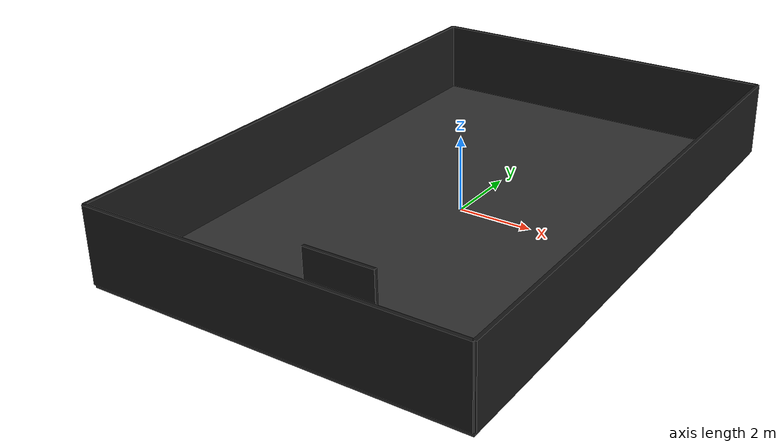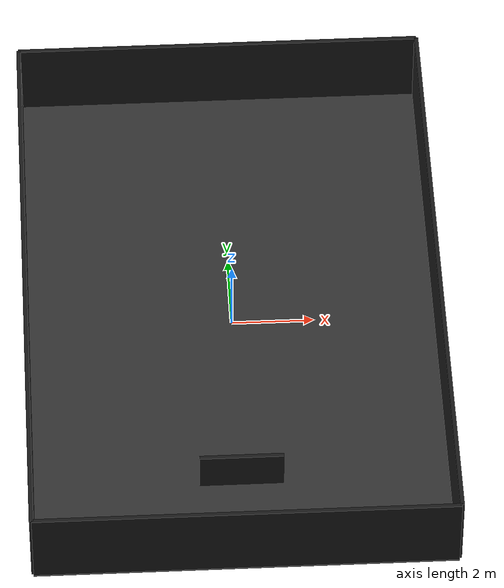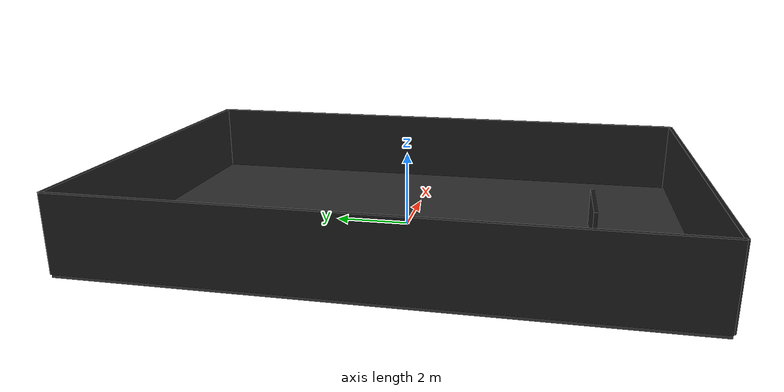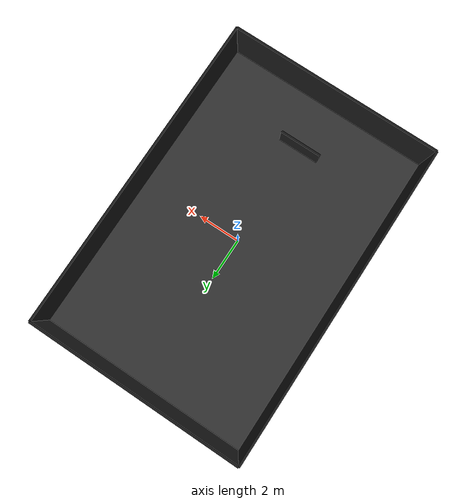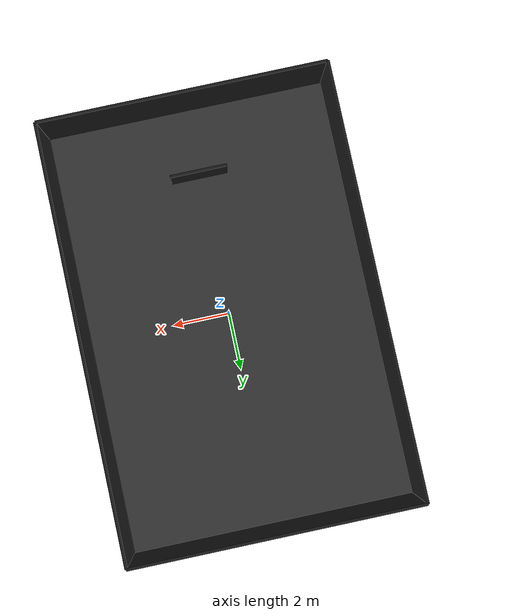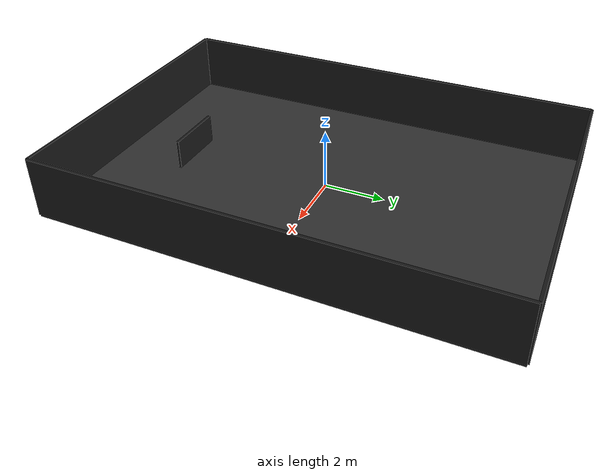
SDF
<?xml version="1.0" ?>
<sdf version="1.5">
  <world name="my_custom_world">

    <physics name='default_physics' default='0' type='ode'>
      <gravity>0 0 -9.8066</gravity>
      <ode>
        <solver>
          <type>quick</type>
          <iters>10</iters>
          <sor>1.3</sor>
          <use_dynamic_moi_rescaling>0</use_dynamic_moi_rescaling>
        </solver>
        <constraints>
          <cfm>0</cfm>
          <erp>0.2</erp>
          <contact_max_correcting_vel>100</contact_max_correcting_vel>
          <contact_surface_layer>0.001</contact_surface_layer>
        </constraints>
      </ode>
      <max_step_size>0.004</max_step_size>
      <real_time_factor>1</real_time_factor>
      <real_time_update_rate>250</real_time_update_rate>
      <magnetic_field>6.0e-6 2.3e-5 -4.2e-5</magnetic_field>
    </physics>

    <light type="directional" name="sun">
      <cast_shadows>true</cast_shadows>
      <pose>0 0 10 0 0 0</pose>
      <diffuse>0.8 0.8 0.8 1</diffuse>
      <specular>0.2 0.2 0.2 1</specular>
      <attenuation>
        <range>1000</range>
        <constant>0.9</constant>
        <linear>0.01</linear>
        <quadratic>0.001</quadratic>
      </attenuation>
      <direction>-0.5 0.1 -0.9</direction>
    </light>

    <model name="muro1">
      <static>true</static>
      <pose>5 0 1 0 0 0</pose>
      <link name="link">
        <collision name="collision">
          <geometry>
            <box>
              <size>0.1 15 2</size>
            </box>
          </geometry>
        </collision>
        <visual name="visual">
        <material>
          <ambient>0.1 0.1 0.1 1</ambient>
          <diffuse>0.1 0.1 0.1 1</diffuse>
          <specular>0 0 0 0</specular>
          <emissive>0 0 0 1</emissive>
        </material>
          <geometry>
            <box>
              <size>0.1 15 2</size>
            </box>
          </geometry>
        </visual>
      </link>
    </model>

    <model name="muro2">
      <static>true</static>
      <pose>0 7.5 1 0 0 0</pose>
      <link name="link">
        <collision name="collision">
          <geometry>
            <box>
              <size>10 0.1 2</size>
            </box>
          </geometry>
        </collision>
        <visual name="visual">
        <material>
          <ambient>0.1 0.1 0.1 1</ambient>
          <diffuse>0.1 0.1 0.1 1</diffuse>
          <specular>0 0 0 0</specular>
          <emissive>0 0 0 1</emissive>
        </material>
          <geometry>
            <box>
              <size>10 0.1 2</size>
            </box>
          </geometry>
        </visual>
      </link>
    </model>

    <model name="muro3">
      <static>true</static>
      <pose>-5 0 1 0 0 0</pose>
      <link name="link">
        <collision name="collision">
          <geometry>
            <box>
              <size>0.1 15 2</size>
            </box>
          </geometry>
        </collision>
        <visual name="visual">
        <material>
          <ambient>0.1 0.1 0.1 1</ambient>
          <diffuse>0.1 0.1 0.1 1</diffuse>
          <specular>0 0 0 0</specular>
          <emissive>0 0 0 1</emissive>
        </material>
          <geometry>
            <box>
              <size>0.1 15 2</size>
            </box>
          </geometry>
        </visual>
      </link>
    </model>

    <model name="muro4">
      <static>true</static>
      <pose>0 -7.5 1 0 0 0</pose>
      <link name="link">
        <collision name="collision">
          <geometry>
            <box>
              <size>10 0.1 2</size>
            </box>
          </geometry>
        </collision>
        <visual name="visual">
        <material>
          <ambient>0.1 0.1 0.1 1</ambient>
          <diffuse>0.1 0.1 0.1 1</diffuse>
          <specular>0 0 0 0</specular>
          <emissive>0 0 0 1</emissive>
        </material>
          <geometry>
            <box>
              <size>10 0.1 2</size>
            </box>
          </geometry>
        </visual>
      </link>
    </model>

    <model name="pavimento">
      <static>true</static>
      <pose>0 0 -0.05 0 0 0</pose>
      <link name="link">
        <collision name="collision">
          <geometry>
            <box>
              <size>10 15 0.1</size>
            </box>
          </geometry>
        </collision>
        <visual name="visual">
         <material>
          <ambient>0.1 0.1 0.1 1</ambient>
          <diffuse>0.2 0.2 0.2 1</diffuse>
          <specular>0 0 0 0</specular>
          <emissive>0 0 0 1</emissive>
        </material>
          <geometry>
            <box>
              <size>10 15 0.1</size>
            </box>
          </geometry>
        </visual>
      </link>
    </model>

    <model name="cont1">
      <static>true</static>
      <pose>0 -5 0.5 0 0 0</pose>
      <link name="link">
        <collision name="collision">
          <geometry>
            <box>
              <size>2 0.1 1</size>
            </box>
          </geometry>
        </collision>
        <visual name="visual">
        <material>
          <ambient>0.1 0.1 0.1 1</ambient>
          <diffuse>0.1 0.1 0.1 1</diffuse>
          <specular>0 0 0 0</specular>
          <emissive>0 0 0 1</emissive>
        </material>
          <geometry>
            <box>
              <size>2 0.1 1</size>
            </box>
          </geometry>
        </visual>
      </link>
    </model>

    <!-- AR markers -->

  <plugin
    filename="gz-sim-physics-system"
    name="gz::sim::systems::Physics">
  </plugin>
  <plugin
    filename="gz-sim-user-commands-system"
    name="gz::sim::systems::UserCommands">
  </plugin>
    <plugin
    filename="gz-sim-scene-broadcaster-system"
    name="gz::sim::systems::SceneBroadcaster">
  </plugin>

  </world>
</sdf>
